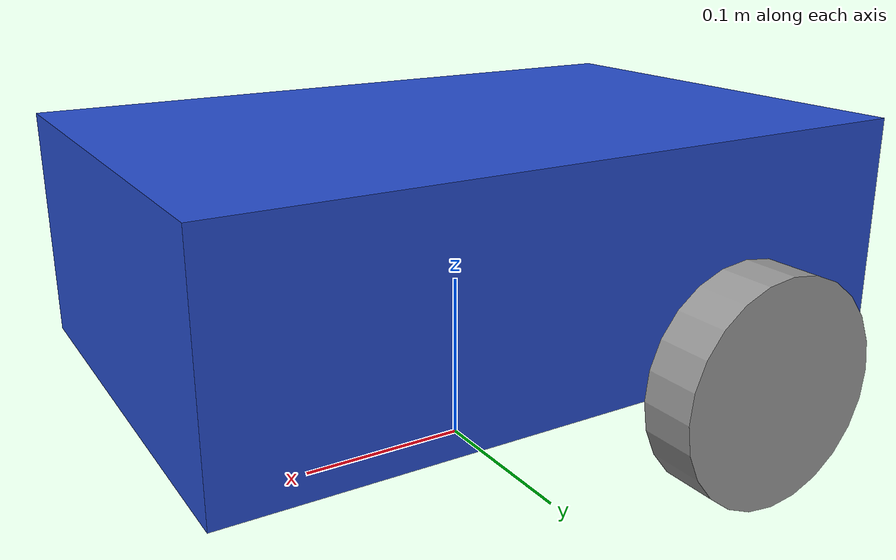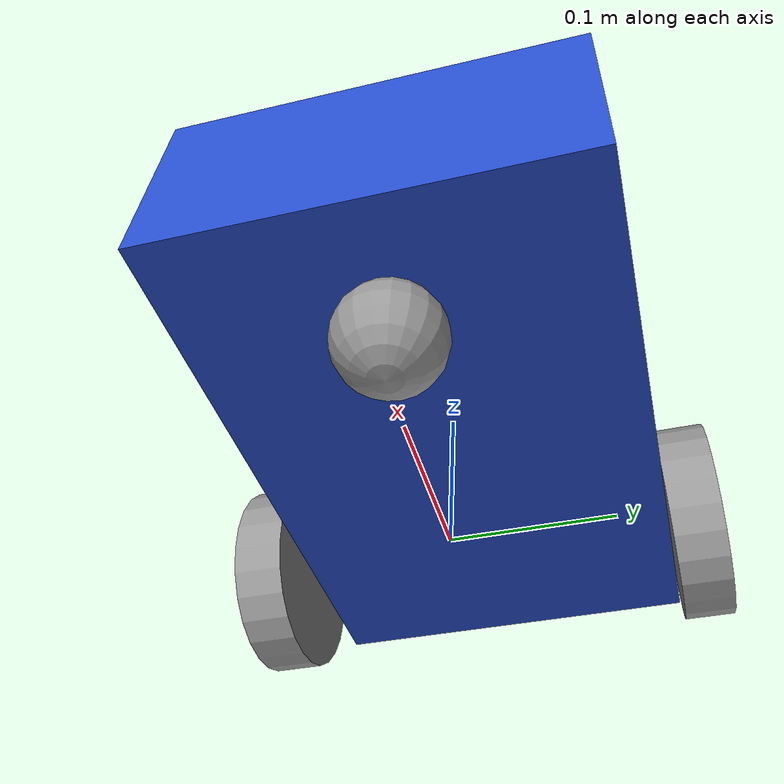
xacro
<?xml version="1.0"?>
<robot xmlns:xacro="http://www.ros.org/wiki/xacro">

    <xacro:property name="base_length" value="0.4"/>
    <xacro:property name="base_width" value="0.264"/>
    <xacro:property name="base_height" value="0.132"/>
    <xacro:property name="wheel_radius" value="0.066"/>
    <xacro:property name="wheel_length" value="0.033"/>

    <xacro:macro name="wheel_link" params="prefix">
        <link name="${prefix}_wheel_link">
            <visual>
                <geometry>
                    <cylinder radius="${wheel_radius}" length="${wheel_length}"/>
                </geometry>
                <origin xyz="0.0 0.0 0.0" rpy="0.0 0.0 0.0"/>
                <material name="grey"/>
            </visual>
            <collision>
                <geometry>
                    <cylinder radius="${wheel_radius}" length="${wheel_length}"/>
                </geometry>
                <origin xyz="0.0 0.0 0.0" rpy="0.0 0.0 0.0"/>
            </collision>
            <xacro:cylinder_inertia m="1.0" r="${2*wheel_radius}" h="${2*wheel_length}" xyz="0 0 0" rpy="0 0 0" />
        </link>
    </xacro:macro>

    <link name="base_foot_print"/>

    <joint name="base_foot_print_base_joint" type="fixed">
        <parent link="base_foot_print"/>
        <child link="base_link"/>
        <origin xyz="0.0 0.0 ${wheel_radius}" rpy="0.0 0.0 0.0"/>
    </joint>

    <link name="base_link">
        <visual>
            <geometry>
                <box size="${base_length} ${base_width} ${base_height}"/>
            </geometry>
            <origin xyz="0.0 0.0 ${base_height/2.0}" rpy="0.0 0.0 0.0"/>
            <material name='blue'/>
        </visual>
        <collision>
            <geometry>
                <box size="${base_length} ${base_width} ${base_height}"/>
            </geometry>
            <origin xyz="0.0 0.0 ${base_height/2.0}" rpy="0.0 0.0 0.0"/>
        </collision>
        <xacro:box_inertia m="5.0" l="${2*base_length}" w="${2*base_width}" h="${2*base_height}"
                            xyz="0.0 0.0 ${base_height/2.0}" rpy="0.0 0.0 0.0"/>
    </link>

    <xacro:wheel_link prefix="right"/>

    <joint name="base_right_wheel_joint" type="continuous">
        <parent link="base_link"/>
        <child link="right_wheel_link"/>
        <origin xyz="${-base_length/4} ${-base_width/2.0-wheel_length/2.0} 0" rpy="${3*pi / 2.0} 0 0"/>
        <axis xyz="0 0 1"/>

    </joint>

    <xacro:wheel_link prefix="left"/>

    <joint name="base_left_wheel_joint" type="continuous">
        <parent link="base_link"/>
        <child link="left_wheel_link"/>
        <origin xyz="${-base_length/4} ${base_width/2+wheel_length/2} 0" rpy="${3*pi / 2.0} 0 0"/>
        <axis xyz="0 0 1"/>

    </joint>

    <link name="caster_wheel_link">
        <visual>
            <geometry>
                <sphere radius="${wheel_radius/2.0}"/>
            </geometry>
            <origin xyz="0.0 0.0 0.0" rpy="0.0 0.0 0.0"/>
            <material name="grey"/>
        </visual>
        <collision>
            <geometry>
                <sphere radius="${wheel_radius/2.0}"/>
            </geometry>
            <origin xyz="0.0 0.0 0.0" rpy="0.0 0.0 0.0"/>
        </collision>
        <xacro:sphere_inertia m="0.5" r="${2*wheel_radius/2.0}" xyz="0.0 0.0 0.0" rpy="0.0 0.0 0.0" />
    </link>

    <joint name="base_caster_wheel_joint" type="fixed">
        <parent link="base_link"/>
        <child link="caster_wheel_link"/>
        <origin xyz="${base_length/3} 0.0 ${-wheel_radius/2}" rpy="0.0 0.0 0.0"/>
    </joint>
</robot>
